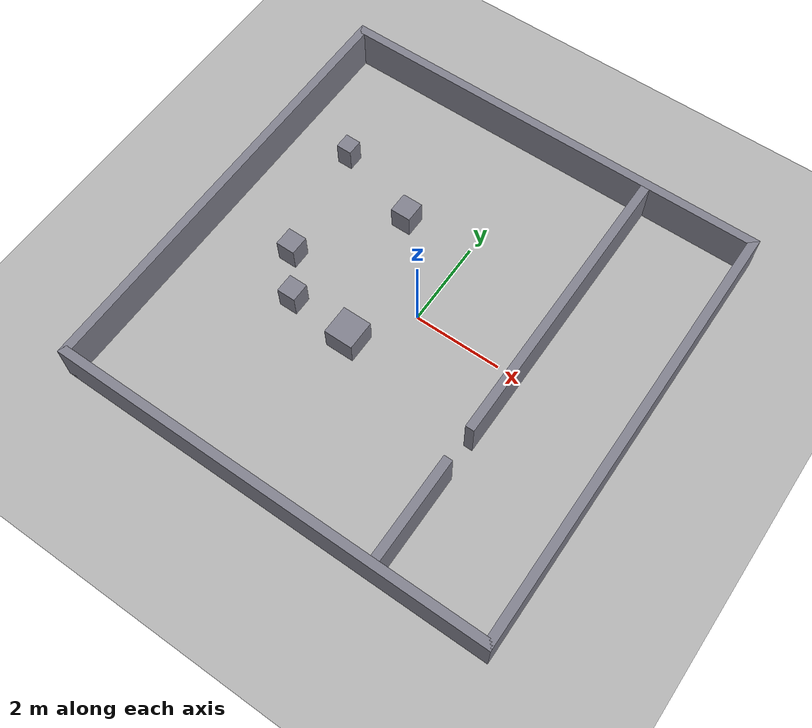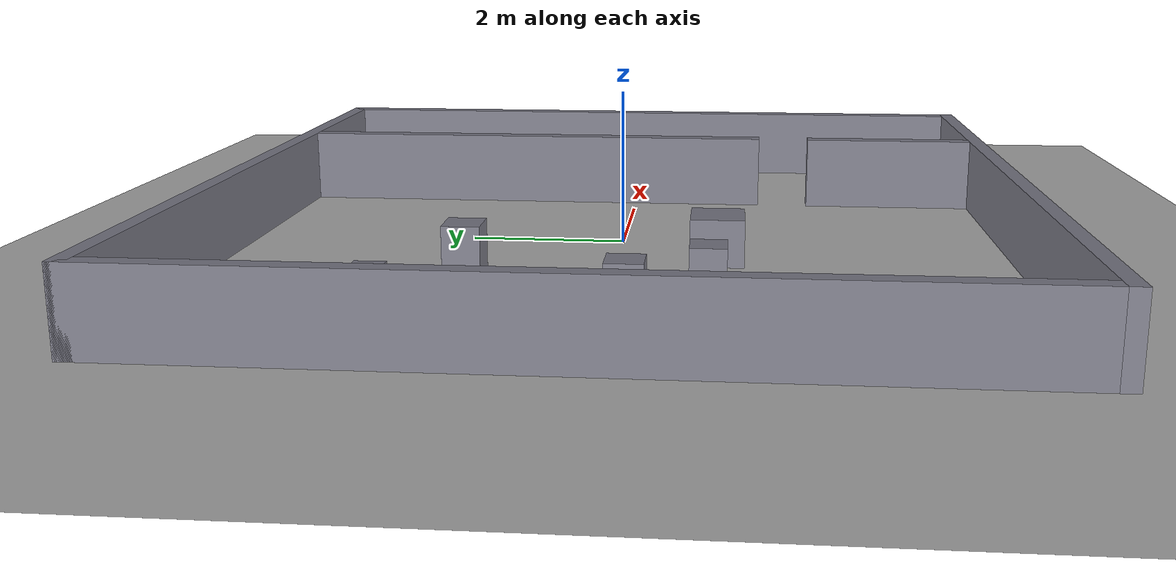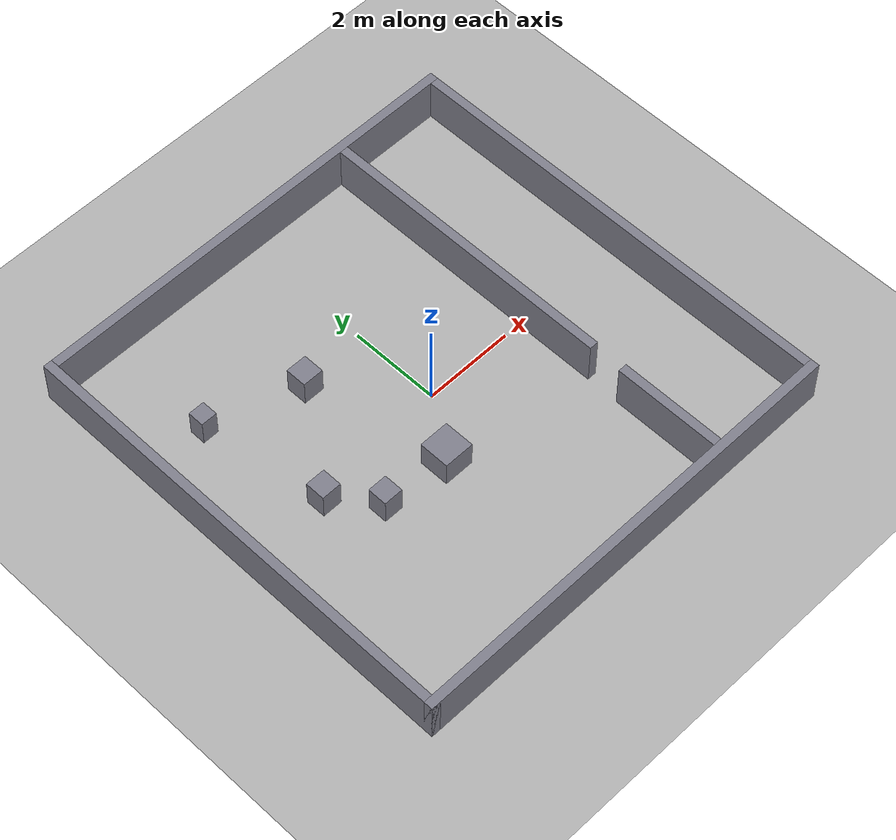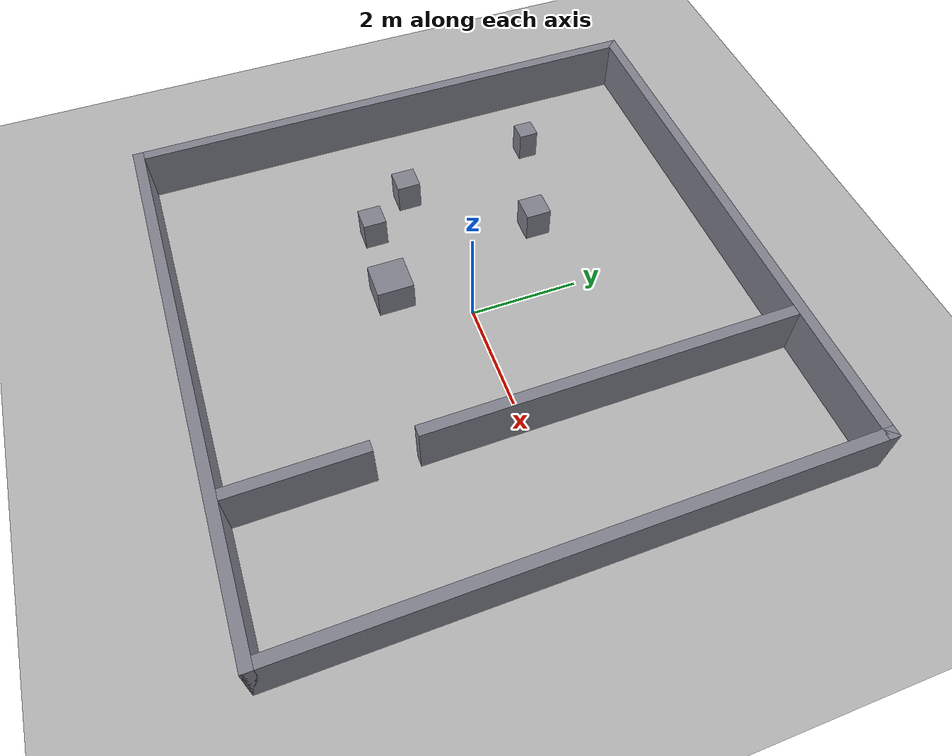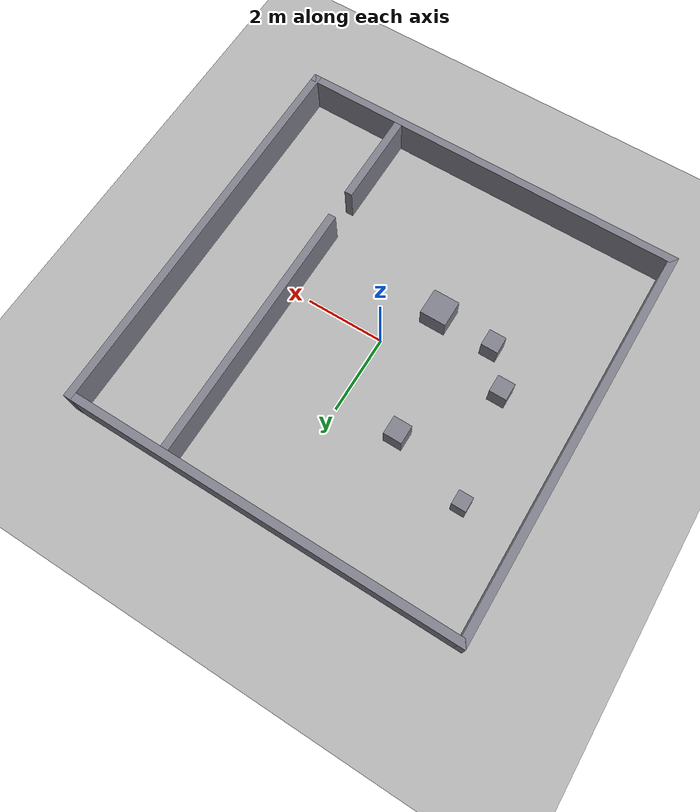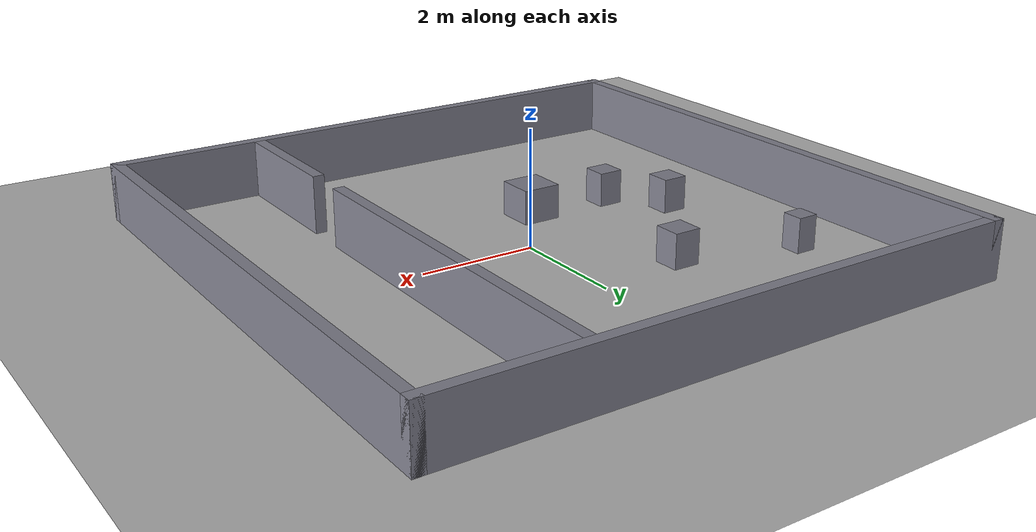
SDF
<?xml version="1.0"?>
<sdf version="1.10">
  <world name="scenario_15">
    <physics name="fast" type="ignored">
      <max_step_size>0.005</max_step_size>
      <real_time_factor>1.0</real_time_factor>
      <real_time_update_rate>200</real_time_update_rate>
    </physics>
    <plugin filename="gz-sim-physics-system" name="gz::sim::systems::Physics"/>
    <plugin filename="gz-sim-user-commands-system" name="gz::sim::systems::UserCommands"/>
    <plugin filename="gz-sim-scene-broadcaster-system" name="gz::sim::systems::SceneBroadcaster"/>
    <plugin filename="gz-sim-sensors-system" name="gz::sim::systems::Sensors">
      <render_engine>ogre2</render_engine>
    </plugin>
    <light type="directional" name="sun">
      <cast_shadows>false</cast_shadows>
      <pose>0 0 10 0 0 0</pose>
      <diffuse>0.9 0.9 0.9 1</diffuse>
      <direction>-0.5 0.2 -0.9</direction>
    </light>
    <model name="ground_plane">
      <static>true</static>
      <link name="link">
        <collision name="c"><geometry><plane><normal>0 0 1</normal><size>20 20</size></plane></geometry></collision>
        <visual name="v"><geometry><plane><normal>0 0 1</normal><size>20 20</size></plane></geometry>
          <material><ambient>0.7 0.7 0.7 1</ambient><diffuse>0.7 0.7 0.7 1</diffuse></material></visual>
      </link>
    </model>
    <model name="box_0">
      <static>true</static>
      <pose>0.0 5.0 0.5 0 0 0</pose>
      <link name="link">
        <collision name="c"><geometry><box><size>10.2 0.2 1.0</size></box></geometry></collision>
        <visual name="v"><geometry><box><size>10.2 0.2 1.0</size></box></geometry>
          <material><ambient>0.5 0.5 0.55 1</ambient><diffuse>0.5 0.5 0.55 1</diffuse></material></visual>
      </link>
    </model>
    <model name="box_1">
      <static>true</static>
      <pose>0.0 -5.0 0.5 0 0 0</pose>
      <link name="link">
        <collision name="c"><geometry><box><size>10.2 0.2 1.0</size></box></geometry></collision>
        <visual name="v"><geometry><box><size>10.2 0.2 1.0</size></box></geometry>
          <material><ambient>0.5 0.5 0.55 1</ambient><diffuse>0.5 0.5 0.55 1</diffuse></material></visual>
      </link>
    </model>
    <model name="box_2">
      <static>true</static>
      <pose>5.0 0.0 0.5 0 0 0</pose>
      <link name="link">
        <collision name="c"><geometry><box><size>0.2 10.2 1.0</size></box></geometry></collision>
        <visual name="v"><geometry><box><size>0.2 10.2 1.0</size></box></geometry>
          <material><ambient>0.5 0.5 0.55 1</ambient><diffuse>0.5 0.5 0.55 1</diffuse></material></visual>
      </link>
    </model>
    <model name="box_3">
      <static>true</static>
      <pose>-5.0 0.0 0.5 0 0 0</pose>
      <link name="link">
        <collision name="c"><geometry><box><size>0.2 10.2 1.0</size></box></geometry></collision>
        <visual name="v"><geometry><box><size>0.2 10.2 1.0</size></box></geometry>
          <material><ambient>0.5 0.5 0.55 1</ambient><diffuse>0.5 0.5 0.55 1</diffuse></material></visual>
      </link>
    </model>
    <model name="box_4">
      <static>true</static>
      <pose>2.48 -3.7211890961933056 0.5 0 0 0</pose>
      <link name="link">
        <collision name="c"><geometry><box><size>0.2 2.3576218076133895 1.0</size></box></geometry></collision>
        <visual name="v"><geometry><box><size>0.2 2.3576218076133895 1.0</size></box></geometry>
          <material><ambient>0.5 0.5 0.55 1</ambient><diffuse>0.5 0.5 0.55 1</diffuse></material></visual>
      </link>
    </model>
    <model name="box_5">
      <static>true</static>
      <pose>2.48 1.5388109038066946 0.5 0 0 0</pose>
      <link name="link">
        <collision name="c"><geometry><box><size>0.2 6.7223781923866115 1.0</size></box></geometry></collision>
        <visual name="v"><geometry><box><size>0.2 6.7223781923866115 1.0</size></box></geometry>
          <material><ambient>0.5 0.5 0.55 1</ambient><diffuse>0.5 0.5 0.55 1</diffuse></material></visual>
      </link>
    </model>
    <model name="box_6">
      <static>true</static>
      <pose>-3.56 2.44 0.3 0 0 0</pose>
      <link name="link">
        <collision name="c"><geometry><box><size>0.36 0.36 0.6</size></box></geometry></collision>
        <visual name="v"><geometry><box><size>0.36 0.36 0.6</size></box></geometry>
          <material><ambient>0.5 0.5 0.55 1</ambient><diffuse>0.5 0.5 0.55 1</diffuse></material></visual>
      </link>
    </model>
    <model name="box_7">
      <static>true</static>
      <pose>-3.06 -0.27 0.3 0 0 0</pose>
      <link name="link">
        <collision name="c"><geometry><box><size>0.44 0.44 0.6</size></box></geometry></collision>
        <visual name="v"><geometry><box><size>0.44 0.44 0.6</size></box></geometry>
          <material><ambient>0.5 0.5 0.55 1</ambient><diffuse>0.5 0.5 0.55 1</diffuse></material></visual>
      </link>
    </model>
    <model name="box_8">
      <static>true</static>
      <pose>-0.86 -1.25 0.3 0 0 0</pose>
      <link name="link">
        <collision name="c"><geometry><box><size>0.67 0.67 0.6</size></box></geometry></collision>
        <visual name="v"><geometry><box><size>0.67 0.67 0.6</size></box></geometry>
          <material><ambient>0.5 0.5 0.55 1</ambient><diffuse>0.5 0.5 0.55 1</diffuse></material></visual>
      </link>
    </model>
    <model name="box_9">
      <static>true</static>
      <pose>-2.35 -1.16 0.3 0 0 0</pose>
      <link name="link">
        <collision name="c"><geometry><box><size>0.43 0.43 0.6</size></box></geometry></collision>
        <visual name="v"><geometry><box><size>0.43 0.43 0.6</size></box></geometry>
          <material><ambient>0.5 0.5 0.55 1</ambient><diffuse>0.5 0.5 0.55 1</diffuse></material></visual>
      </link>
    </model>
    <model name="box_10">
      <static>true</static>
      <pose>-1.55 1.81 0.3 0 0 0</pose>
      <link name="link">
        <collision name="c"><geometry><box><size>0.47 0.47 0.6</size></box></geometry></collision>
        <visual name="v"><geometry><box><size>0.47 0.47 0.6</size></box></geometry>
          <material><ambient>0.5 0.5 0.55 1</ambient><diffuse>0.5 0.5 0.55 1</diffuse></material></visual>
      </link>
    </model>
  </world>
</sdf>
